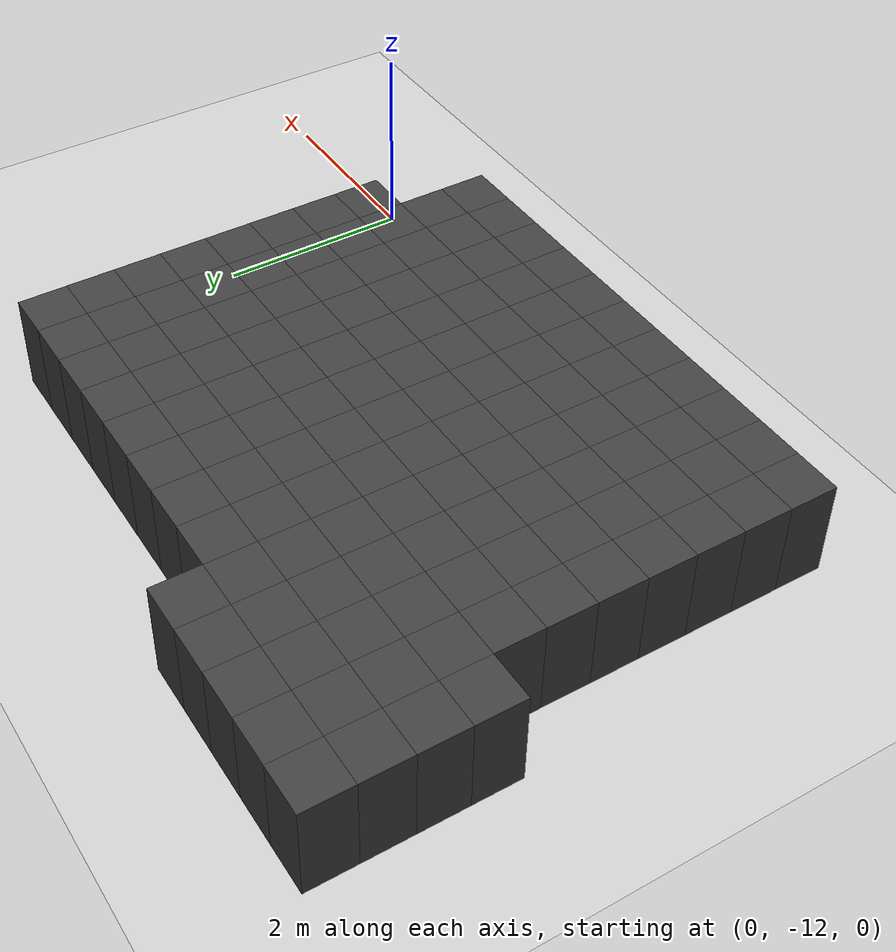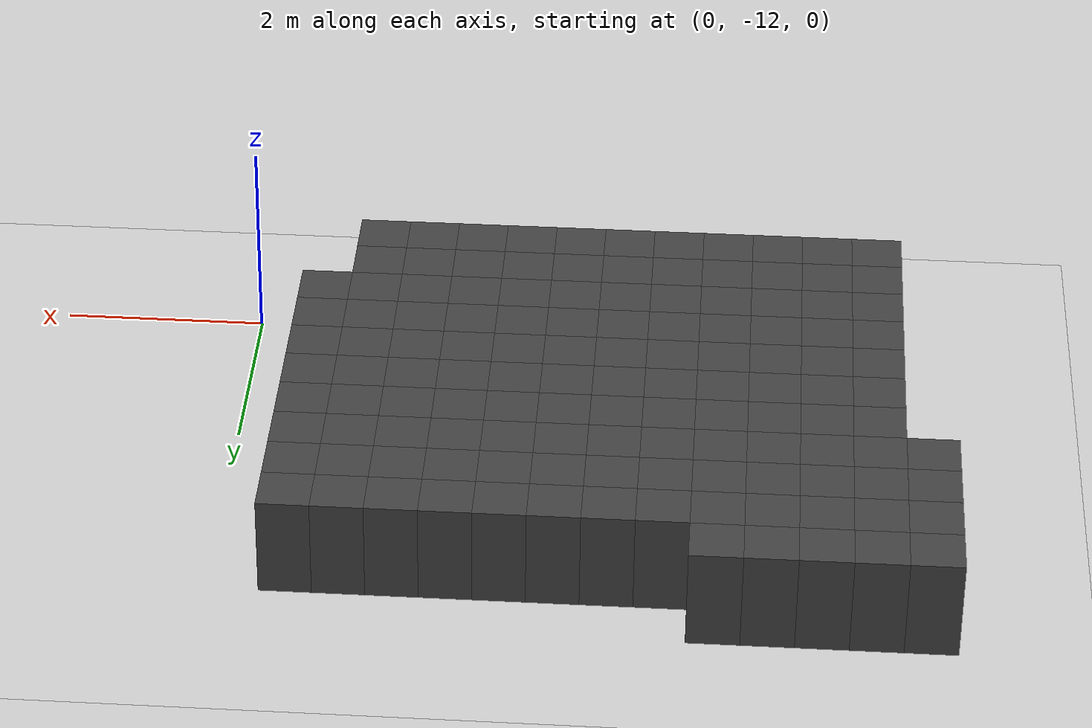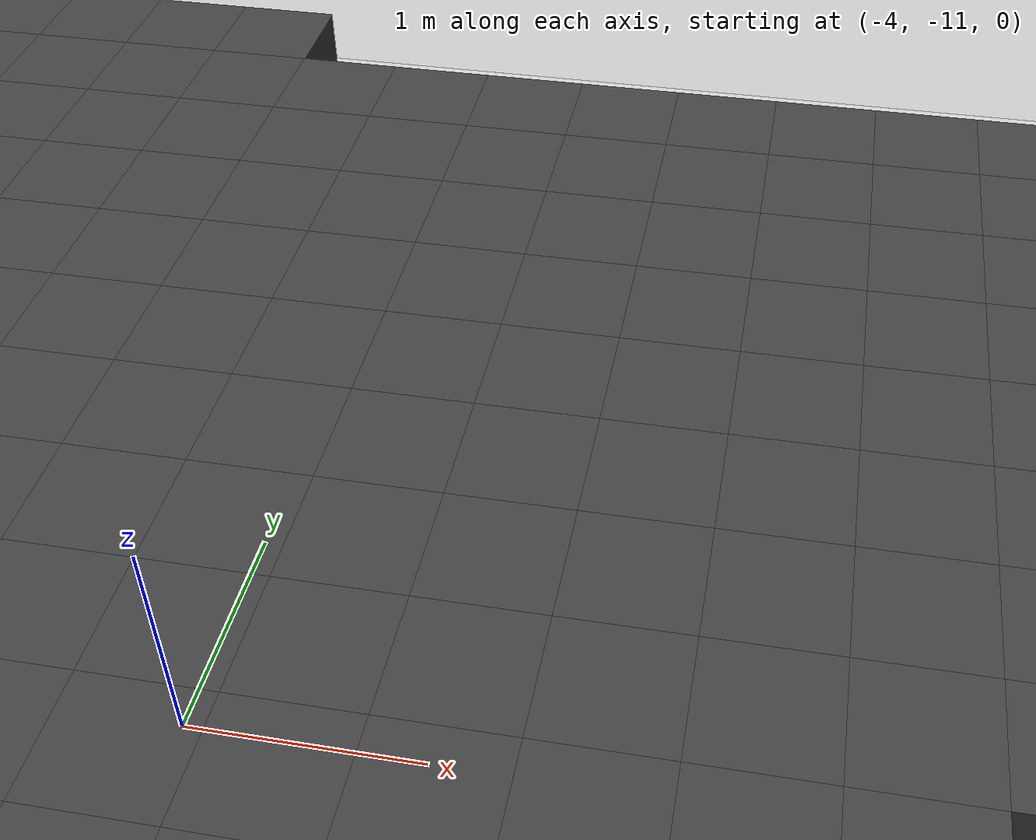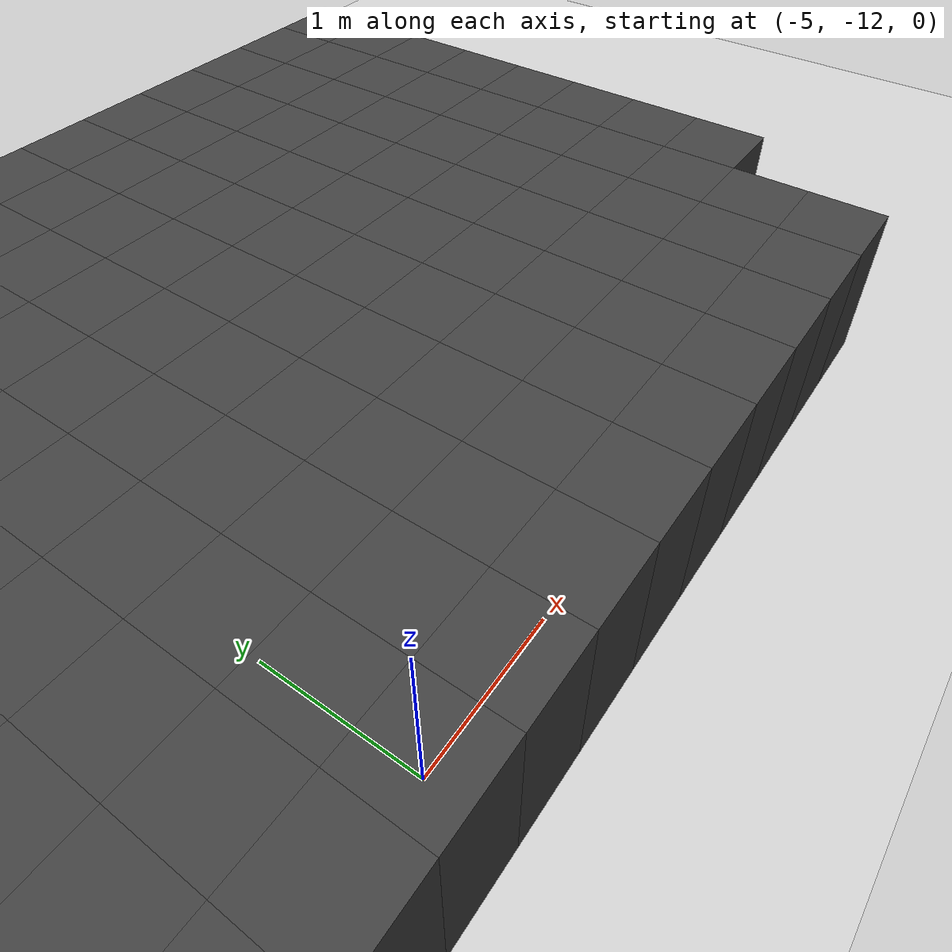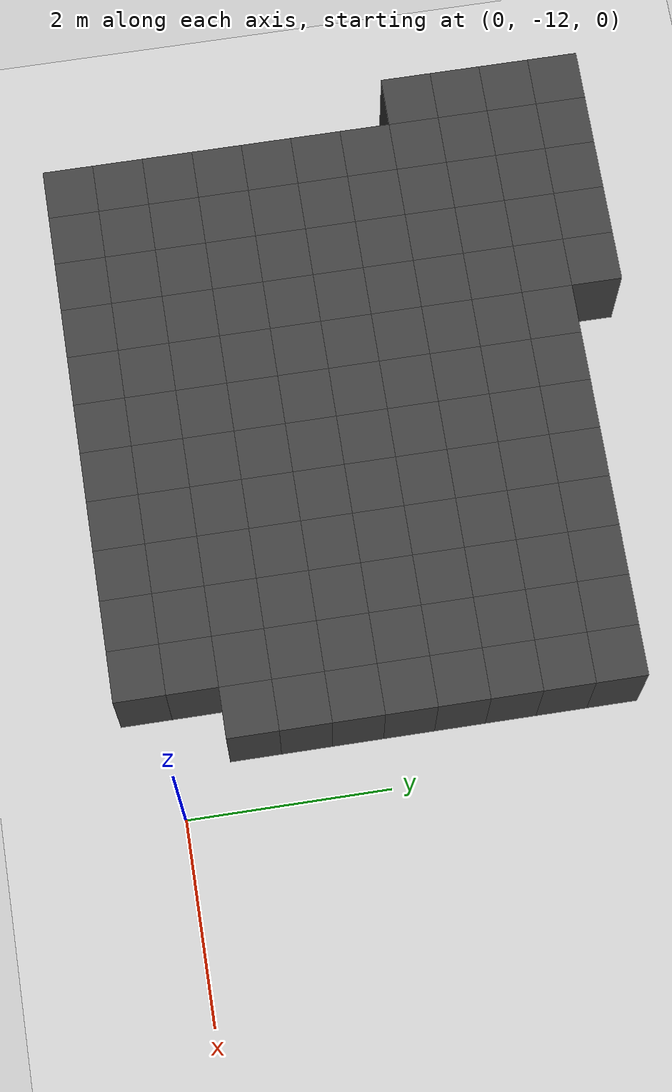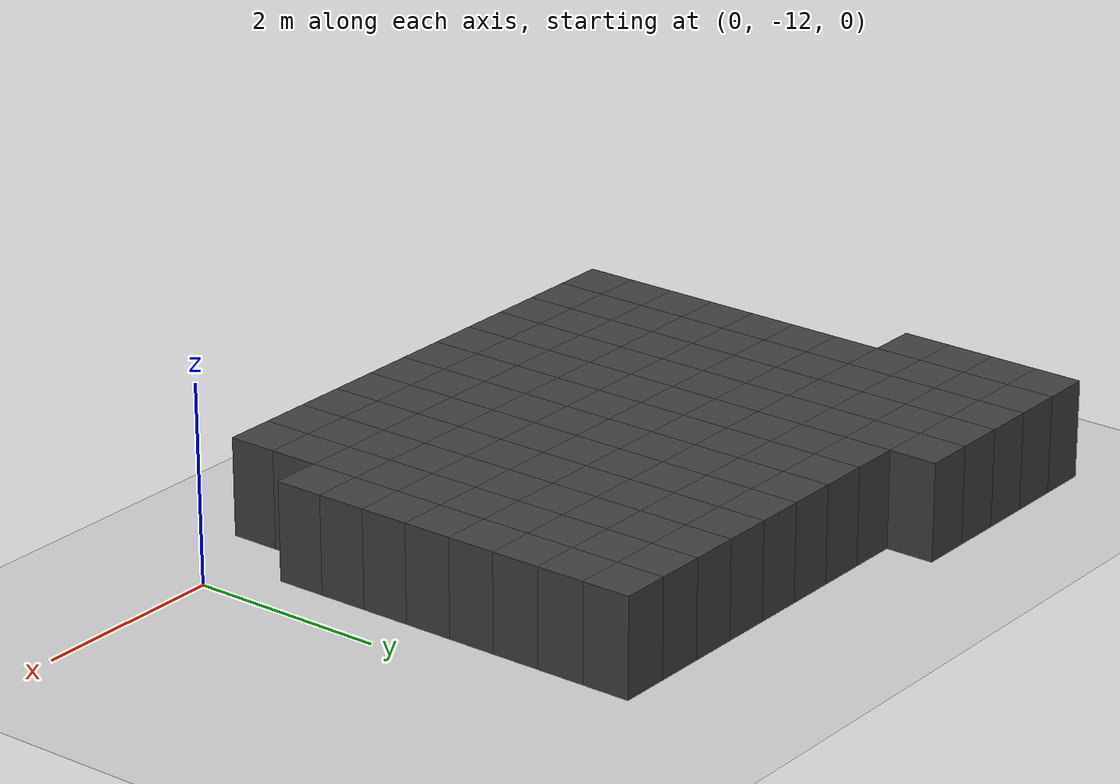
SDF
<sdf version="1.7">
 <world name="map_11672">
  <model name="ground_plane">
   <static>true</static>
   <link name="link">
    <collision name="collision">
     <geometry><plane><normal>0 0 1</normal><size>200 200</size></plane></geometry>
    </collision>
    <visual name="visual">
     <geometry><plane><normal>0 0 1</normal><size>200 200</size></plane></geometry>
     <material><ambient>0.8 0.8 0.8 1</ambient><diffuse>0.8 0.8 0.8 1</diffuse></material>
    </visual>
   </link>
  </model>
  <model name="maze_environment">
   <static>true</static>
   <link name="wall_1639">
    <pose>-6.750 -7.250 0.500 0 0 0</pose>
    <collision name="col"><geometry><box><size>0.5 0.5 1.0</size></box></geometry></collision>
    <visual name="vis">
     <geometry><box><size>0.5 0.5 1.0</size></box></geometry>
     <material><ambient>0.15 0.15 0.15 1</ambient><diffuse>0.25 0.25 0.25 1</diffuse></material>
    </visual>
   </link>
   <link name="wall_1640">
    <pose>-6.250 -7.250 0.500 0 0 0</pose>
    <collision name="col"><geometry><box><size>0.5 0.5 1.0</size></box></geometry></collision>
    <visual name="vis">
     <geometry><box><size>0.5 0.5 1.0</size></box></geometry>
     <material><ambient>0.15 0.15 0.15 1</ambient><diffuse>0.25 0.25 0.25 1</diffuse></material>
    </visual>
   </link>
   <link name="wall_1641">
    <pose>-5.750 -7.250 0.500 0 0 0</pose>
    <collision name="col"><geometry><box><size>0.5 0.5 1.0</size></box></geometry></collision>
    <visual name="vis">
     <geometry><box><size>0.5 0.5 1.0</size></box></geometry>
     <material><ambient>0.15 0.15 0.15 1</ambient><diffuse>0.25 0.25 0.25 1</diffuse></material>
    </visual>
   </link>
   <link name="wall_1642">
    <pose>-5.250 -7.250 0.500 0 0 0</pose>
    <collision name="col"><geometry><box><size>0.5 0.5 1.0</size></box></geometry></collision>
    <visual name="vis">
     <geometry><box><size>0.5 0.5 1.0</size></box></geometry>
     <material><ambient>0.15 0.15 0.15 1</ambient><diffuse>0.25 0.25 0.25 1</diffuse></material>
    </visual>
   </link>
   <link name="wall_1643">
    <pose>-4.750 -7.250 0.500 0 0 0</pose>
    <collision name="col"><geometry><box><size>0.5 0.5 1.0</size></box></geometry></collision>
    <visual name="vis">
     <geometry><box><size>0.5 0.5 1.0</size></box></geometry>
     <material><ambient>0.15 0.15 0.15 1</ambient><diffuse>0.25 0.25 0.25 1</diffuse></material>
    </visual>
   </link>
   <link name="wall_1688">
    <pose>-6.750 -7.750 0.500 0 0 0</pose>
    <collision name="col"><geometry><box><size>0.5 0.5 1.0</size></box></geometry></collision>
    <visual name="vis">
     <geometry><box><size>0.5 0.5 1.0</size></box></geometry>
     <material><ambient>0.15 0.15 0.15 1</ambient><diffuse>0.25 0.25 0.25 1</diffuse></material>
    </visual>
   </link>
   <link name="wall_1689">
    <pose>-6.250 -7.750 0.500 0 0 0</pose>
    <collision name="col"><geometry><box><size>0.5 0.5 1.0</size></box></geometry></collision>
    <visual name="vis">
     <geometry><box><size>0.5 0.5 1.0</size></box></geometry>
     <material><ambient>0.15 0.15 0.15 1</ambient><diffuse>0.25 0.25 0.25 1</diffuse></material>
    </visual>
   </link>
   <link name="wall_1690">
    <pose>-5.750 -7.750 0.500 0 0 0</pose>
    <collision name="col"><geometry><box><size>0.5 0.5 1.0</size></box></geometry></collision>
    <visual name="vis">
     <geometry><box><size>0.5 0.5 1.0</size></box></geometry>
     <material><ambient>0.15 0.15 0.15 1</ambient><diffuse>0.25 0.25 0.25 1</diffuse></material>
    </visual>
   </link>
   <link name="wall_1691">
    <pose>-5.250 -7.750 0.500 0 0 0</pose>
    <collision name="col"><geometry><box><size>0.5 0.5 1.0</size></box></geometry></collision>
    <visual name="vis">
     <geometry><box><size>0.5 0.5 1.0</size></box></geometry>
     <material><ambient>0.15 0.15 0.15 1</ambient><diffuse>0.25 0.25 0.25 1</diffuse></material>
    </visual>
   </link>
   <link name="wall_1692">
    <pose>-4.750 -7.750 0.500 0 0 0</pose>
    <collision name="col"><geometry><box><size>0.5 0.5 1.0</size></box></geometry></collision>
    <visual name="vis">
     <geometry><box><size>0.5 0.5 1.0</size></box></geometry>
     <material><ambient>0.15 0.15 0.15 1</ambient><diffuse>0.25 0.25 0.25 1</diffuse></material>
    </visual>
   </link>
   <link name="wall_1693">
    <pose>-4.250 -7.750 0.500 0 0 0</pose>
    <collision name="col"><geometry><box><size>0.5 0.5 1.0</size></box></geometry></collision>
    <visual name="vis">
     <geometry><box><size>0.5 0.5 1.0</size></box></geometry>
     <material><ambient>0.15 0.15 0.15 1</ambient><diffuse>0.25 0.25 0.25 1</diffuse></material>
    </visual>
   </link>
   <link name="wall_1694">
    <pose>-3.750 -7.750 0.500 0 0 0</pose>
    <collision name="col"><geometry><box><size>0.5 0.5 1.0</size></box></geometry></collision>
    <visual name="vis">
     <geometry><box><size>0.5 0.5 1.0</size></box></geometry>
     <material><ambient>0.15 0.15 0.15 1</ambient><diffuse>0.25 0.25 0.25 1</diffuse></material>
    </visual>
   </link>
   <link name="wall_1695">
    <pose>-3.250 -7.750 0.500 0 0 0</pose>
    <collision name="col"><geometry><box><size>0.5 0.5 1.0</size></box></geometry></collision>
    <visual name="vis">
     <geometry><box><size>0.5 0.5 1.0</size></box></geometry>
     <material><ambient>0.15 0.15 0.15 1</ambient><diffuse>0.25 0.25 0.25 1</diffuse></material>
    </visual>
   </link>
   <link name="wall_1696">
    <pose>-2.750 -7.750 0.500 0 0 0</pose>
    <collision name="col"><geometry><box><size>0.5 0.5 1.0</size></box></geometry></collision>
    <visual name="vis">
     <geometry><box><size>0.5 0.5 1.0</size></box></geometry>
     <material><ambient>0.15 0.15 0.15 1</ambient><diffuse>0.25 0.25 0.25 1</diffuse></material>
    </visual>
   </link>
   <link name="wall_1697">
    <pose>-2.250 -7.750 0.500 0 0 0</pose>
    <collision name="col"><geometry><box><size>0.5 0.5 1.0</size></box></geometry></collision>
    <visual name="vis">
     <geometry><box><size>0.5 0.5 1.0</size></box></geometry>
     <material><ambient>0.15 0.15 0.15 1</ambient><diffuse>0.25 0.25 0.25 1</diffuse></material>
    </visual>
   </link>
   <link name="wall_1698">
    <pose>-1.750 -7.750 0.500 0 0 0</pose>
    <collision name="col"><geometry><box><size>0.5 0.5 1.0</size></box></geometry></collision>
    <visual name="vis">
     <geometry><box><size>0.5 0.5 1.0</size></box></geometry>
     <material><ambient>0.15 0.15 0.15 1</ambient><diffuse>0.25 0.25 0.25 1</diffuse></material>
    </visual>
   </link>
   <link name="wall_1699">
    <pose>-1.250 -7.750 0.500 0 0 0</pose>
    <collision name="col"><geometry><box><size>0.5 0.5 1.0</size></box></geometry></collision>
    <visual name="vis">
     <geometry><box><size>0.5 0.5 1.0</size></box></geometry>
     <material><ambient>0.15 0.15 0.15 1</ambient><diffuse>0.25 0.25 0.25 1</diffuse></material>
    </visual>
   </link>
   <link name="wall_1700">
    <pose>-0.750 -7.750 0.500 0 0 0</pose>
    <collision name="col"><geometry><box><size>0.5 0.5 1.0</size></box></geometry></collision>
    <visual name="vis">
     <geometry><box><size>0.5 0.5 1.0</size></box></geometry>
     <material><ambient>0.15 0.15 0.15 1</ambient><diffuse>0.25 0.25 0.25 1</diffuse></material>
    </visual>
   </link>
   <link name="wall_1737">
    <pose>-6.750 -8.250 0.500 0 0 0</pose>
    <collision name="col"><geometry><box><size>0.5 0.5 1.0</size></box></geometry></collision>
    <visual name="vis">
     <geometry><box><size>0.5 0.5 1.0</size></box></geometry>
     <material><ambient>0.15 0.15 0.15 1</ambient><diffuse>0.25 0.25 0.25 1</diffuse></material>
    </visual>
   </link>
   <link name="wall_1738">
    <pose>-6.250 -8.250 0.500 0 0 0</pose>
    <collision name="col"><geometry><box><size>0.5 0.5 1.0</size></box></geometry></collision>
    <visual name="vis">
     <geometry><box><size>0.5 0.5 1.0</size></box></geometry>
     <material><ambient>0.15 0.15 0.15 1</ambient><diffuse>0.25 0.25 0.25 1</diffuse></material>
    </visual>
   </link>
   <link name="wall_1739">
    <pose>-5.750 -8.250 0.500 0 0 0</pose>
    <collision name="col"><geometry><box><size>0.5 0.5 1.0</size></box></geometry></collision>
    <visual name="vis">
     <geometry><box><size>0.5 0.5 1.0</size></box></geometry>
     <material><ambient>0.15 0.15 0.15 1</ambient><diffuse>0.25 0.25 0.25 1</diffuse></material>
    </visual>
   </link>
   <link name="wall_1740">
    <pose>-5.250 -8.250 0.500 0 0 0</pose>
    <collision name="col"><geometry><box><size>0.5 0.5 1.0</size></box></geometry></collision>
    <visual name="vis">
     <geometry><box><size>0.5 0.5 1.0</size></box></geometry>
     <material><ambient>0.15 0.15 0.15 1</ambient><diffuse>0.25 0.25 0.25 1</diffuse></material>
    </visual>
   </link>
   <link name="wall_1741">
    <pose>-4.750 -8.250 0.500 0 0 0</pose>
    <collision name="col"><geometry><box><size>0.5 0.5 1.0</size></box></geometry></collision>
    <visual name="vis">
     <geometry><box><size>0.5 0.5 1.0</size></box></geometry>
     <material><ambient>0.15 0.15 0.15 1</ambient><diffuse>0.25 0.25 0.25 1</diffuse></material>
    </visual>
   </link>
   <link name="wall_1742">
    <pose>-4.250 -8.250 0.500 0 0 0</pose>
    <collision name="col"><geometry><box><size>0.5 0.5 1.0</size></box></geometry></collision>
    <visual name="vis">
     <geometry><box><size>0.5 0.5 1.0</size></box></geometry>
     <material><ambient>0.15 0.15 0.15 1</ambient><diffuse>0.25 0.25 0.25 1</diffuse></material>
    </visual>
   </link>
   <link name="wall_1743">
    <pose>-3.750 -8.250 0.500 0 0 0</pose>
    <collision name="col"><geometry><box><size>0.5 0.5 1.0</size></box></geometry></collision>
    <visual name="vis">
     <geometry><box><size>0.5 0.5 1.0</size></box></geometry>
     <material><ambient>0.15 0.15 0.15 1</ambient><diffuse>0.25 0.25 0.25 1</diffuse></material>
    </visual>
   </link>
   <link name="wall_1744">
    <pose>-3.250 -8.250 0.500 0 0 0</pose>
    <collision name="col"><geometry><box><size>0.5 0.5 1.0</size></box></geometry></collision>
    <visual name="vis">
     <geometry><box><size>0.5 0.5 1.0</size></box></geometry>
     <material><ambient>0.15 0.15 0.15 1</ambient><diffuse>0.25 0.25 0.25 1</diffuse></material>
    </visual>
   </link>
   <link name="wall_1745">
    <pose>-2.750 -8.250 0.500 0 0 0</pose>
    <collision name="col"><geometry><box><size>0.5 0.5 1.0</size></box></geometry></collision>
    <visual name="vis">
     <geometry><box><size>0.5 0.5 1.0</size></box></geometry>
     <material><ambient>0.15 0.15 0.15 1</ambient><diffuse>0.25 0.25 0.25 1</diffuse></material>
    </visual>
   </link>
   <link name="wall_1746">
    <pose>-2.250 -8.250 0.500 0 0 0</pose>
    <collision name="col"><geometry><box><size>0.5 0.5 1.0</size></box></geometry></collision>
    <visual name="vis">
     <geometry><box><size>0.5 0.5 1.0</size></box></geometry>
     <material><ambient>0.15 0.15 0.15 1</ambient><diffuse>0.25 0.25 0.25 1</diffuse></material>
    </visual>
   </link>
   <link name="wall_1747">
    <pose>-1.750 -8.250 0.500 0 0 0</pose>
    <collision name="col"><geometry><box><size>0.5 0.5 1.0</size></box></geometry></collision>
    <visual name="vis">
     <geometry><box><size>0.5 0.5 1.0</size></box></geometry>
     <material><ambient>0.15 0.15 0.15 1</ambient><diffuse>0.25 0.25 0.25 1</diffuse></material>
    </visual>
   </link>
   <link name="wall_1748">
    <pose>-1.250 -8.250 0.500 0 0 0</pose>
    <collision name="col"><geometry><box><size>0.5 0.5 1.0</size></box></geometry></collision>
    <visual name="vis">
     <geometry><box><size>0.5 0.5 1.0</size></box></geometry>
     <material><ambient>0.15 0.15 0.15 1</ambient><diffuse>0.25 0.25 0.25 1</diffuse></material>
    </visual>
   </link>
   <link name="wall_1749">
    <pose>-0.750 -8.250 0.500 0 0 0</pose>
    <collision name="col"><geometry><box><size>0.5 0.5 1.0</size></box></geometry></collision>
    <visual name="vis">
     <geometry><box><size>0.5 0.5 1.0</size></box></geometry>
     <material><ambient>0.15 0.15 0.15 1</ambient><diffuse>0.25 0.25 0.25 1</diffuse></material>
    </visual>
   </link>
   <link name="wall_1786">
    <pose>-6.750 -8.750 0.500 0 0 0</pose>
    <collision name="col"><geometry><box><size>0.5 0.5 1.0</size></box></geometry></collision>
    <visual name="vis">
     <geometry><box><size>0.5 0.5 1.0</size></box></geometry>
     <material><ambient>0.15 0.15 0.15 1</ambient><diffuse>0.25 0.25 0.25 1</diffuse></material>
    </visual>
   </link>
   <link name="wall_1787">
    <pose>-6.250 -8.750 0.500 0 0 0</pose>
    <collision name="col"><geometry><box><size>0.5 0.5 1.0</size></box></geometry></collision>
    <visual name="vis">
     <geometry><box><size>0.5 0.5 1.0</size></box></geometry>
     <material><ambient>0.15 0.15 0.15 1</ambient><diffuse>0.25 0.25 0.25 1</diffuse></material>
    </visual>
   </link>
   <link name="wall_1788">
    <pose>-5.750 -8.750 0.500 0 0 0</pose>
    <collision name="col"><geometry><box><size>0.5 0.5 1.0</size></box></geometry></collision>
    <visual name="vis">
     <geometry><box><size>0.5 0.5 1.0</size></box></geometry>
     <material><ambient>0.15 0.15 0.15 1</ambient><diffuse>0.25 0.25 0.25 1</diffuse></material>
    </visual>
   </link>
   <link name="wall_1789">
    <pose>-5.250 -8.750 0.500 0 0 0</pose>
    <collision name="col"><geometry><box><size>0.5 0.5 1.0</size></box></geometry></collision>
    <visual name="vis">
     <geometry><box><size>0.5 0.5 1.0</size></box></geometry>
     <material><ambient>0.15 0.15 0.15 1</ambient><diffuse>0.25 0.25 0.25 1</diffuse></material>
    </visual>
   </link>
   <link name="wall_1790">
    <pose>-4.750 -8.750 0.500 0 0 0</pose>
    <collision name="col"><geometry><box><size>0.5 0.5 1.0</size></box></geometry></collision>
    <visual name="vis">
     <geometry><box><size>0.5 0.5 1.0</size></box></geometry>
     <material><ambient>0.15 0.15 0.15 1</ambient><diffuse>0.25 0.25 0.25 1</diffuse></material>
    </visual>
   </link>
   <link name="wall_1791">
    <pose>-4.250 -8.750 0.500 0 0 0</pose>
    <collision name="col"><geometry><box><size>0.5 0.5 1.0</size></box></geometry></collision>
    <visual name="vis">
     <geometry><box><size>0.5 0.5 1.0</size></box></geometry>
     <material><ambient>0.15 0.15 0.15 1</ambient><diffuse>0.25 0.25 0.25 1</diffuse></material>
    </visual>
   </link>
   <link name="wall_1792">
    <pose>-3.750 -8.750 0.500 0 0 0</pose>
    <collision name="col"><geometry><box><size>0.5 0.5 1.0</size></box></geometry></collision>
    <visual name="vis">
     <geometry><box><size>0.5 0.5 1.0</size></box></geometry>
     <material><ambient>0.15 0.15 0.15 1</ambient><diffuse>0.25 0.25 0.25 1</diffuse></material>
    </visual>
   </link>
   <link name="wall_1793">
    <pose>-3.250 -8.750 0.500 0 0 0</pose>
    <collision name="col"><geometry><box><size>0.5 0.5 1.0</size></box></geometry></collision>
    <visual name="vis">
     <geometry><box><size>0.5 0.5 1.0</size></box></geometry>
     <material><ambient>0.15 0.15 0.15 1</ambient><diffuse>0.25 0.25 0.25 1</diffuse></material>
    </visual>
   </link>
   <link name="wall_1794">
    <pose>-2.750 -8.750 0.500 0 0 0</pose>
    <collision name="col"><geometry><box><size>0.5 0.5 1.0</size></box></geometry></collision>
    <visual name="vis">
     <geometry><box><size>0.5 0.5 1.0</size></box></geometry>
     <material><ambient>0.15 0.15 0.15 1</ambient><diffuse>0.25 0.25 0.25 1</diffuse></material>
    </visual>
   </link>
   <link name="wall_1795">
    <pose>-2.250 -8.750 0.500 0 0 0</pose>
    <collision name="col"><geometry><box><size>0.5 0.5 1.0</size></box></geometry></collision>
    <visual name="vis">
     <geometry><box><size>0.5 0.5 1.0</size></box></geometry>
     <material><ambient>0.15 0.15 0.15 1</ambient><diffuse>0.25 0.25 0.25 1</diffuse></material>
    </visual>
   </link>
   <link name="wall_1796">
    <pose>-1.750 -8.750 0.500 0 0 0</pose>
    <collision name="col"><geometry><box><size>0.5 0.5 1.0</size></box></geometry></collision>
    <visual name="vis">
     <geometry><box><size>0.5 0.5 1.0</size></box></geometry>
     <material><ambient>0.15 0.15 0.15 1</ambient><diffuse>0.25 0.25 0.25 1</diffuse></material>
    </visual>
   </link>
   <link name="wall_1797">
    <pose>-1.250 -8.750 0.500 0 0 0</pose>
    <collision name="col"><geometry><box><size>0.5 0.5 1.0</size></box></geometry></collision>
    <visual name="vis">
     <geometry><box><size>0.5 0.5 1.0</size></box></geometry>
     <material><ambient>0.15 0.15 0.15 1</ambient><diffuse>0.25 0.25 0.25 1</diffuse></material>
    </visual>
   </link>
   <link name="wall_1798">
    <pose>-0.750 -8.750 0.500 0 0 0</pose>
    <collision name="col"><geometry><box><size>0.5 0.5 1.0</size></box></geometry></collision>
    <visual name="vis">
     <geometry><box><size>0.5 0.5 1.0</size></box></geometry>
     <material><ambient>0.15 0.15 0.15 1</ambient><diffuse>0.25 0.25 0.25 1</diffuse></material>
    </visual>
   </link>
   <link name="wall_1836">
    <pose>-6.250 -9.250 0.500 0 0 0</pose>
    <collision name="col"><geometry><box><size>0.5 0.5 1.0</size></box></geometry></collision>
    <visual name="vis">
     <geometry><box><size>0.5 0.5 1.0</size></box></geometry>
     <material><ambient>0.15 0.15 0.15 1</ambient><diffuse>0.25 0.25 0.25 1</diffuse></material>
    </visual>
   </link>
   <link name="wall_1837">
    <pose>-5.750 -9.250 0.500 0 0 0</pose>
    <collision name="col"><geometry><box><size>0.5 0.5 1.0</size></box></geometry></collision>
    <visual name="vis">
     <geometry><box><size>0.5 0.5 1.0</size></box></geometry>
     <material><ambient>0.15 0.15 0.15 1</ambient><diffuse>0.25 0.25 0.25 1</diffuse></material>
    </visual>
   </link>
   <link name="wall_1838">
    <pose>-5.250 -9.250 0.500 0 0 0</pose>
    <collision name="col"><geometry><box><size>0.5 0.5 1.0</size></box></geometry></collision>
    <visual name="vis">
     <geometry><box><size>0.5 0.5 1.0</size></box></geometry>
     <material><ambient>0.15 0.15 0.15 1</ambient><diffuse>0.25 0.25 0.25 1</diffuse></material>
    </visual>
   </link>
   <link name="wall_1839">
    <pose>-4.750 -9.250 0.500 0 0 0</pose>
    <collision name="col"><geometry><box><size>0.5 0.5 1.0</size></box></geometry></collision>
    <visual name="vis">
     <geometry><box><size>0.5 0.5 1.0</size></box></geometry>
     <material><ambient>0.15 0.15 0.15 1</ambient><diffuse>0.25 0.25 0.25 1</diffuse></material>
    </visual>
   </link>
   <link name="wall_1840">
    <pose>-4.250 -9.250 0.500 0 0 0</pose>
    <collision name="col"><geometry><box><size>0.5 0.5 1.0</size></box></geometry></collision>
    <visual name="vis">
     <geometry><box><size>0.5 0.5 1.0</size></box></geometry>
     <material><ambient>0.15 0.15 0.15 1</ambient><diffuse>0.25 0.25 0.25 1</diffuse></material>
    </visual>
   </link>
   <link name="wall_1841">
    <pose>-3.750 -9.250 0.500 0 0 0</pose>
    <collision name="col"><geometry><box><size>0.5 0.5 1.0</size></box></geometry></collision>
    <visual name="vis">
     <geometry><box><size>0.5 0.5 1.0</size></box></geometry>
     <material><ambient>0.15 0.15 0.15 1</ambient><diffuse>0.25 0.25 0.25 1</diffuse></material>
    </visual>
   </link>
   <link name="wall_1842">
    <pose>-3.250 -9.250 0.500 0 0 0</pose>
    <collision name="col"><geometry><box><size>0.5 0.5 1.0</size></box></geometry></collision>
    <visual name="vis">
     <geometry><box><size>0.5 0.5 1.0</size></box></geometry>
     <material><ambient>0.15 0.15 0.15 1</ambient><diffuse>0.25 0.25 0.25 1</diffuse></material>
    </visual>
   </link>
   <link name="wall_1843">
    <pose>-2.750 -9.250 0.500 0 0 0</pose>
    <collision name="col"><geometry><box><size>0.5 0.5 1.0</size></box></geometry></collision>
    <visual name="vis">
     <geometry><box><size>0.5 0.5 1.0</size></box></geometry>
     <material><ambient>0.15 0.15 0.15 1</ambient><diffuse>0.25 0.25 0.25 1</diffuse></material>
    </visual>
   </link>
   <link name="wall_1844">
    <pose>-2.250 -9.250 0.500 0 0 0</pose>
    <collision name="col"><geometry><box><size>0.5 0.5 1.0</size></box></geometry></collision>
    <visual name="vis">
     <geometry><box><size>0.5 0.5 1.0</size></box></geometry>
     <material><ambient>0.15 0.15 0.15 1</ambient><diffuse>0.25 0.25 0.25 1</diffuse></material>
    </visual>
   </link>
   <link name="wall_1845">
    <pose>-1.750 -9.250 0.500 0 0 0</pose>
    <collision name="col"><geometry><box><size>0.5 0.5 1.0</size></box></geometry></collision>
    <visual name="vis">
     <geometry><box><size>0.5 0.5 1.0</size></box></geometry>
     <material><ambient>0.15 0.15 0.15 1</ambient><diffuse>0.25 0.25 0.25 1</diffuse></material>
    </visual>
   </link>
   <link name="wall_1846">
    <pose>-1.250 -9.250 0.500 0 0 0</pose>
    <collision name="col"><geometry><box><size>0.5 0.5 1.0</size></box></geometry></collision>
    <visual name="vis">
     <geometry><box><size>0.5 0.5 1.0</size></box></geometry>
     <material><ambient>0.15 0.15 0.15 1</ambient><diffuse>0.25 0.25 0.25 1</diffuse></material>
    </visual>
   </link>
   <link name="wall_1847">
    <pose>-0.750 -9.250 0.500 0 0 0</pose>
    <collision name="col"><geometry><box><size>0.5 0.5 1.0</size></box></geometry></collision>
    <visual name="vis">
     <geometry><box><size>0.5 0.5 1.0</size></box></geometry>
     <material><ambient>0.15 0.15 0.15 1</ambient><diffuse>0.25 0.25 0.25 1</diffuse></material>
    </visual>
   </link>
   <link name="wall_1885">
    <pose>-6.250 -9.750 0.500 0 0 0</pose>
    <collision name="col"><geometry><box><size>0.5 0.5 1.0</size></box></geometry></collision>
    <visual name="vis">
     <geometry><box><size>0.5 0.5 1.0</size></box></geometry>
     <material><ambient>0.15 0.15 0.15 1</ambient><diffuse>0.25 0.25 0.25 1</diffuse></material>
    </visual>
   </link>
   <link name="wall_1886">
    <pose>-5.750 -9.750 0.500 0 0 0</pose>
    <collision name="col"><geometry><box><size>0.5 0.5 1.0</size></box></geometry></collision>
    <visual name="vis">
     <geometry><box><size>0.5 0.5 1.0</size></box></geometry>
     <material><ambient>0.15 0.15 0.15 1</ambient><diffuse>0.25 0.25 0.25 1</diffuse></material>
    </visual>
   </link>
   <link name="wall_1887">
    <pose>-5.250 -9.750 0.500 0 0 0</pose>
    <collision name="col"><geometry><box><size>0.5 0.5 1.0</size></box></geometry></collision>
    <visual name="vis">
     <geometry><box><size>0.5 0.5 1.0</size></box></geometry>
     <material><ambient>0.15 0.15 0.15 1</ambient><diffuse>0.25 0.25 0.25 1</diffuse></material>
    </visual>
   </link>
   <link name="wall_1888">
    <pose>-4.750 -9.750 0.500 0 0 0</pose>
    <collision name="col"><geometry><box><size>0.5 0.5 1.0</size></box></geometry></collision>
    <visual name="vis">
     <geometry><box><size>0.5 0.5 1.0</size></box></geometry>
     <material><ambient>0.15 0.15 0.15 1</ambient><diffuse>0.25 0.25 0.25 1</diffuse></material>
    </visual>
   </link>
   <link name="wall_1889">
    <pose>-4.250 -9.750 0.500 0 0 0</pose>
    <collision name="col"><geometry><box><size>0.5 0.5 1.0</size></box></geometry></collision>
    <visual name="vis">
     <geometry><box><size>0.5 0.5 1.0</size></box></geometry>
     <material><ambient>0.15 0.15 0.15 1</ambient><diffuse>0.25 0.25 0.25 1</diffuse></material>
    </visual>
   </link>
   <link name="wall_1890">
    <pose>-3.750 -9.750 0.500 0 0 0</pose>
    <collision name="col"><geometry><box><size>0.5 0.5 1.0</size></box></geometry></collision>
    <visual name="vis">
     <geometry><box><size>0.5 0.5 1.0</size></box></geometry>
     <material><ambient>0.15 0.15 0.15 1</ambient><diffuse>0.25 0.25 0.25 1</diffuse></material>
    </visual>
   </link>
   <link name="wall_1891">
    <pose>-3.250 -9.750 0.500 0 0 0</pose>
    <collision name="col"><geometry><box><size>0.5 0.5 1.0</size></box></geometry></collision>
    <visual name="vis">
     <geometry><box><size>0.5 0.5 1.0</size></box></geometry>
     <material><ambient>0.15 0.15 0.15 1</ambient><diffuse>0.25 0.25 0.25 1</diffuse></material>
    </visual>
   </link>
   <link name="wall_1892">
    <pose>-2.750 -9.750 0.500 0 0 0</pose>
    <collision name="col"><geometry><box><size>0.5 0.5 1.0</size></box></geometry></collision>
    <visual name="vis">
     <geometry><box><size>0.5 0.5 1.0</size></box></geometry>
     <material><ambient>0.15 0.15 0.15 1</ambient><diffuse>0.25 0.25 0.25 1</diffuse></material>
    </visual>
   </link>
   <link name="wall_1893">
    <pose>-2.250 -9.750 0.500 0 0 0</pose>
    <collision name="col"><geometry><box><size>0.5 0.5 1.0</size></box></geometry></collision>
    <visual name="vis">
     <geometry><box><size>0.5 0.5 1.0</size></box></geometry>
     <material><ambient>0.15 0.15 0.15 1</ambient><diffuse>0.25 0.25 0.25 1</diffuse></material>
    </visual>
   </link>
   <link name="wall_1894">
    <pose>-1.750 -9.750 0.500 0 0 0</pose>
    <collision name="col"><geometry><box><size>0.5 0.5 1.0</size></box></geometry></collision>
    <visual name="vis">
     <geometry><box><size>0.5 0.5 1.0</size></box></geometry>
     <material><ambient>0.15 0.15 0.15 1</ambient><diffuse>0.25 0.25 0.25 1</diffuse></material>
    </visual>
   </link>
   <link name="wall_1895">
    <pose>-1.250 -9.750 0.500 0 0 0</pose>
    <collision name="col"><geometry><box><size>0.5 0.5 1.0</size></box></geometry></collision>
    <visual name="vis">
     <geometry><box><size>0.5 0.5 1.0</size></box></geometry>
     <material><ambient>0.15 0.15 0.15 1</ambient><diffuse>0.25 0.25 0.25 1</diffuse></material>
    </visual>
   </link>
   <link name="wall_1896">
    <pose>-0.750 -9.750 0.500 0 0 0</pose>
    <collision name="col"><geometry><box><size>0.5 0.5 1.0</size></box></geometry></collision>
    <visual name="vis">
     <geometry><box><size>0.5 0.5 1.0</size></box></geometry>
     <material><ambient>0.15 0.15 0.15 1</ambient><diffuse>0.25 0.25 0.25 1</diffuse></material>
    </visual>
   </link>
   <link name="wall_1934">
    <pose>-6.250 -10.250 0.500 0 0 0</pose>
    <collision name="col"><geometry><box><size>0.5 0.5 1.0</size></box></geometry></collision>
    <visual name="vis">
     <geometry><box><size>0.5 0.5 1.0</size></box></geometry>
     <material><ambient>0.15 0.15 0.15 1</ambient><diffuse>0.25 0.25 0.25 1</diffuse></material>
    </visual>
   </link>
   <link name="wall_1935">
    <pose>-5.750 -10.250 0.500 0 0 0</pose>
    <collision name="col"><geometry><box><size>0.5 0.5 1.0</size></box></geometry></collision>
    <visual name="vis">
     <geometry><box><size>0.5 0.5 1.0</size></box></geometry>
     <material><ambient>0.15 0.15 0.15 1</ambient><diffuse>0.25 0.25 0.25 1</diffuse></material>
    </visual>
   </link>
   <link name="wall_1936">
    <pose>-5.250 -10.250 0.500 0 0 0</pose>
    <collision name="col"><geometry><box><size>0.5 0.5 1.0</size></box></geometry></collision>
    <visual name="vis">
     <geometry><box><size>0.5 0.5 1.0</size></box></geometry>
     <material><ambient>0.15 0.15 0.15 1</ambient><diffuse>0.25 0.25 0.25 1</diffuse></material>
    </visual>
   </link>
   <link name="wall_1937">
    <pose>-4.750 -10.250 0.500 0 0 0</pose>
    <collision name="col"><geometry><box><size>0.5 0.5 1.0</size></box></geometry></collision>
    <visual name="vis">
     <geometry><box><size>0.5 0.5 1.0</size></box></geometry>
     <material><ambient>0.15 0.15 0.15 1</ambient><diffuse>0.25 0.25 0.25 1</diffuse></material>
    </visual>
   </link>
   <link name="wall_1938">
    <pose>-4.250 -10.250 0.500 0 0 0</pose>
    <collision name="col"><geometry><box><size>0.5 0.5 1.0</size></box></geometry></collision>
    <visual name="vis">
     <geometry><box><size>0.5 0.5 1.0</size></box></geometry>
     <material><ambient>0.15 0.15 0.15 1</ambient><diffuse>0.25 0.25 0.25 1</diffuse></material>
    </visual>
   </link>
   <link name="wall_1939">
    <pose>-3.750 -10.250 0.500 0 0 0</pose>
    <collision name="col"><geometry><box><size>0.5 0.5 1.0</size></box></geometry></collision>
    <visual name="vis">
     <geometry><box><size>0.5 0.5 1.0</size></box></geometry>
     <material><ambient>0.15 0.15 0.15 1</ambient><diffuse>0.25 0.25 0.25 1</diffuse></material>
    </visual>
   </link>
   <link name="wall_1940">
    <pose>-3.250 -10.250 0.500 0 0 0</pose>
    <collision name="col"><geometry><box><size>0.5 0.5 1.0</size></box></geometry></collision>
    <visual name="vis">
     <geometry><box><size>0.5 0.5 1.0</size></box></geometry>
     <material><ambient>0.15 0.15 0.15 1</ambient><diffuse>0.25 0.25 0.25 1</diffuse></material>
    </visual>
   </link>
   <link name="wall_1941">
    <pose>-2.750 -10.250 0.500 0 0 0</pose>
    <collision name="col"><geometry><box><size>0.5 0.5 1.0</size></box></geometry></collision>
    <visual name="vis">
     <geometry><box><size>0.5 0.5 1.0</size></box></geometry>
     <material><ambient>0.15 0.15 0.15 1</ambient><diffuse>0.25 0.25 0.25 1</diffuse></material>
    </visual>
   </link>
   <link name="wall_1942">
    <pose>-2.250 -10.250 0.500 0 0 0</pose>
    <collision name="col"><geometry><box><size>0.5 0.5 1.0</size></box></geometry></collision>
    <visual name="vis">
     <geometry><box><size>0.5 0.5 1.0</size></box></geometry>
     <material><ambient>0.15 0.15 0.15 1</ambient><diffuse>0.25 0.25 0.25 1</diffuse></material>
    </visual>
   </link>
   <link name="wall_1943">
    <pose>-1.750 -10.250 0.500 0 0 0</pose>
    <collision name="col"><geometry><box><size>0.5 0.5 1.0</size></box></geometry></collision>
    <visual name="vis">
     <geometry><box><size>0.5 0.5 1.0</size></box></geometry>
     <material><ambient>0.15 0.15 0.15 1</ambient><diffuse>0.25 0.25 0.25 1</diffuse></material>
    </visual>
   </link>
   <link name="wall_1944">
    <pose>-1.250 -10.250 0.500 0 0 0</pose>
    <collision name="col"><geometry><box><size>0.5 0.5 1.0</size></box></geometry></collision>
    <visual name="vis">
     <geometry><box><size>0.5 0.5 1.0</size></box></geometry>
     <material><ambient>0.15 0.15 0.15 1</ambient><diffuse>0.25 0.25 0.25 1</diffuse></material>
    </visual>
   </link>
   <link name="wall_1945">
    <pose>-0.750 -10.250 0.500 0 0 0</pose>
    <collision name="col"><geometry><box><size>0.5 0.5 1.0</size></box></geometry></collision>
    <visual name="vis">
     <geometry><box><size>0.5 0.5 1.0</size></box></geometry>
     <material><ambient>0.15 0.15 0.15 1</ambient><diffuse>0.25 0.25 0.25 1</diffuse></material>
    </visual>
   </link>
   <link name="wall_1983">
    <pose>-6.250 -10.750 0.500 0 0 0</pose>
    <collision name="col"><geometry><box><size>0.5 0.5 1.0</size></box></geometry></collision>
    <visual name="vis">
     <geometry><box><size>0.5 0.5 1.0</size></box></geometry>
     <material><ambient>0.15 0.15 0.15 1</ambient><diffuse>0.25 0.25 0.25 1</diffuse></material>
    </visual>
   </link>
   <link name="wall_1984">
    <pose>-5.750 -10.750 0.500 0 0 0</pose>
    <collision name="col"><geometry><box><size>0.5 0.5 1.0</size></box></geometry></collision>
    <visual name="vis">
     <geometry><box><size>0.5 0.5 1.0</size></box></geometry>
     <material><ambient>0.15 0.15 0.15 1</ambient><diffuse>0.25 0.25 0.25 1</diffuse></material>
    </visual>
   </link>
   <link name="wall_1985">
    <pose>-5.250 -10.750 0.500 0 0 0</pose>
    <collision name="col"><geometry><box><size>0.5 0.5 1.0</size></box></geometry></collision>
    <visual name="vis">
     <geometry><box><size>0.5 0.5 1.0</size></box></geometry>
     <material><ambient>0.15 0.15 0.15 1</ambient><diffuse>0.25 0.25 0.25 1</diffuse></material>
    </visual>
   </link>
   <link name="wall_1986">
    <pose>-4.750 -10.750 0.500 0 0 0</pose>
    <collision name="col"><geometry><box><size>0.5 0.5 1.0</size></box></geometry></collision>
    <visual name="vis">
     <geometry><box><size>0.5 0.5 1.0</size></box></geometry>
     <material><ambient>0.15 0.15 0.15 1</ambient><diffuse>0.25 0.25 0.25 1</diffuse></material>
    </visual>
   </link>
   <link name="wall_1987">
    <pose>-4.250 -10.750 0.500 0 0 0</pose>
    <collision name="col"><geometry><box><size>0.5 0.5 1.0</size></box></geometry></collision>
    <visual name="vis">
     <geometry><box><size>0.5 0.5 1.0</size></box></geometry>
     <material><ambient>0.15 0.15 0.15 1</ambient><diffuse>0.25 0.25 0.25 1</diffuse></material>
    </visual>
   </link>
   <link name="wall_1988">
    <pose>-3.750 -10.750 0.500 0 0 0</pose>
    <collision name="col"><geometry><box><size>0.5 0.5 1.0</size></box></geometry></collision>
    <visual name="vis">
     <geometry><box><size>0.5 0.5 1.0</size></box></geometry>
     <material><ambient>0.15 0.15 0.15 1</ambient><diffuse>0.25 0.25 0.25 1</diffuse></material>
    </visual>
   </link>
   <link name="wall_1989">
    <pose>-3.250 -10.750 0.500 0 0 0</pose>
    <collision name="col"><geometry><box><size>0.5 0.5 1.0</size></box></geometry></collision>
    <visual name="vis">
     <geometry><box><size>0.5 0.5 1.0</size></box></geometry>
     <material><ambient>0.15 0.15 0.15 1</ambient><diffuse>0.25 0.25 0.25 1</diffuse></material>
    </visual>
   </link>
   <link name="wall_1990">
    <pose>-2.750 -10.750 0.500 0 0 0</pose>
    <collision name="col"><geometry><box><size>0.5 0.5 1.0</size></box></geometry></collision>
    <visual name="vis">
     <geometry><box><size>0.5 0.5 1.0</size></box></geometry>
     <material><ambient>0.15 0.15 0.15 1</ambient><diffuse>0.25 0.25 0.25 1</diffuse></material>
    </visual>
   </link>
   <link name="wall_1991">
    <pose>-2.250 -10.750 0.500 0 0 0</pose>
    <collision name="col"><geometry><box><size>0.5 0.5 1.0</size></box></geometry></collision>
    <visual name="vis">
     <geometry><box><size>0.5 0.5 1.0</size></box></geometry>
     <material><ambient>0.15 0.15 0.15 1</ambient><diffuse>0.25 0.25 0.25 1</diffuse></material>
    </visual>
   </link>
   <link name="wall_1992">
    <pose>-1.750 -10.750 0.500 0 0 0</pose>
    <collision name="col"><geometry><box><size>0.5 0.5 1.0</size></box></geometry></collision>
    <visual name="vis">
     <geometry><box><size>0.5 0.5 1.0</size></box></geometry>
     <material><ambient>0.15 0.15 0.15 1</ambient><diffuse>0.25 0.25 0.25 1</diffuse></material>
    </visual>
   </link>
   <link name="wall_1993">
    <pose>-1.250 -10.750 0.500 0 0 0</pose>
    <collision name="col"><geometry><box><size>0.5 0.5 1.0</size></box></geometry></collision>
    <visual name="vis">
     <geometry><box><size>0.5 0.5 1.0</size></box></geometry>
     <material><ambient>0.15 0.15 0.15 1</ambient><diffuse>0.25 0.25 0.25 1</diffuse></material>
    </visual>
   </link>
   <link name="wall_1994">
    <pose>-0.750 -10.750 0.500 0 0 0</pose>
    <collision name="col"><geometry><box><size>0.5 0.5 1.0</size></box></geometry></collision>
    <visual name="vis">
     <geometry><box><size>0.5 0.5 1.0</size></box></geometry>
     <material><ambient>0.15 0.15 0.15 1</ambient><diffuse>0.25 0.25 0.25 1</diffuse></material>
    </visual>
   </link>
   <link name="wall_2029">
    <pose>-6.250 -11.250 0.500 0 0 0</pose>
    <collision name="col"><geometry><box><size>0.5 0.5 1.0</size></box></geometry></collision>
    <visual name="vis">
     <geometry><box><size>0.5 0.5 1.0</size></box></geometry>
     <material><ambient>0.15 0.15 0.15 1</ambient><diffuse>0.25 0.25 0.25 1</diffuse></material>
    </visual>
   </link>
   <link name="wall_2030">
    <pose>-5.750 -11.250 0.500 0 0 0</pose>
    <collision name="col"><geometry><box><size>0.5 0.5 1.0</size></box></geometry></collision>
    <visual name="vis">
     <geometry><box><size>0.5 0.5 1.0</size></box></geometry>
     <material><ambient>0.15 0.15 0.15 1</ambient><diffuse>0.25 0.25 0.25 1</diffuse></material>
    </visual>
   </link>
   <link name="wall_2031">
    <pose>-5.250 -11.250 0.500 0 0 0</pose>
    <collision name="col"><geometry><box><size>0.5 0.5 1.0</size></box></geometry></collision>
    <visual name="vis">
     <geometry><box><size>0.5 0.5 1.0</size></box></geometry>
     <material><ambient>0.15 0.15 0.15 1</ambient><diffuse>0.25 0.25 0.25 1</diffuse></material>
    </visual>
   </link>
   <link name="wall_2032">
    <pose>-4.750 -11.250 0.500 0 0 0</pose>
    <collision name="col"><geometry><box><size>0.5 0.5 1.0</size></box></geometry></collision>
    <visual name="vis">
     <geometry><box><size>0.5 0.5 1.0</size></box></geometry>
     <material><ambient>0.15 0.15 0.15 1</ambient><diffuse>0.25 0.25 0.25 1</diffuse></material>
    </visual>
   </link>
   <link name="wall_2033">
    <pose>-4.250 -11.250 0.500 0 0 0</pose>
    <collision name="col"><geometry><box><size>0.5 0.5 1.0</size></box></geometry></collision>
    <visual name="vis">
     <geometry><box><size>0.5 0.5 1.0</size></box></geometry>
     <material><ambient>0.15 0.15 0.15 1</ambient><diffuse>0.25 0.25 0.25 1</diffuse></material>
    </visual>
   </link>
   <link name="wall_2034">
    <pose>-3.750 -11.250 0.500 0 0 0</pose>
    <collision name="col"><geometry><box><size>0.5 0.5 1.0</size></box></geometry></collision>
    <visual name="vis">
     <geometry><box><size>0.5 0.5 1.0</size></box></geometry>
     <material><ambient>0.15 0.15 0.15 1</ambient><diffuse>0.25 0.25 0.25 1</diffuse></material>
    </visual>
   </link>
   <link name="wall_2035">
    <pose>-3.250 -11.250 0.500 0 0 0</pose>
    <collision name="col"><geometry><box><size>0.5 0.5 1.0</size></box></geometry></collision>
    <visual name="vis">
     <geometry><box><size>0.5 0.5 1.0</size></box></geometry>
     <material><ambient>0.15 0.15 0.15 1</ambient><diffuse>0.25 0.25 0.25 1</diffuse></material>
    </visual>
   </link>
   <link name="wall_2036">
    <pose>-2.750 -11.250 0.500 0 0 0</pose>
    <collision name="col"><geometry><box><size>0.5 0.5 1.0</size></box></geometry></collision>
    <visual name="vis">
     <geometry><box><size>0.5 0.5 1.0</size></box></geometry>
     <material><ambient>0.15 0.15 0.15 1</ambient><diffuse>0.25 0.25 0.25 1</diffuse></material>
    </visual>
   </link>
   <link name="wall_2037">
    <pose>-2.250 -11.250 0.500 0 0 0</pose>
    <collision name="col"><geometry><box><size>0.5 0.5 1.0</size></box></geometry></collision>
    <visual name="vis">
     <geometry><box><size>0.5 0.5 1.0</size></box></geometry>
     <material><ambient>0.15 0.15 0.15 1</ambient><diffuse>0.25 0.25 0.25 1</diffuse></material>
    </visual>
   </link>
   <link name="wall_2038">
    <pose>-1.750 -11.250 0.500 0 0 0</pose>
    <collision name="col"><geometry><box><size>0.5 0.5 1.0</size></box></geometry></collision>
    <visual name="vis">
     <geometry><box><size>0.5 0.5 1.0</size></box></geometry>
     <material><ambient>0.15 0.15 0.15 1</ambient><diffuse>0.25 0.25 0.25 1</diffuse></material>
    </visual>
   </link>
   <link name="wall_2039">
    <pose>-1.250 -11.250 0.500 0 0 0</pose>
    <collision name="col"><geometry><box><size>0.5 0.5 1.0</size></box></geometry></collision>
    <visual name="vis">
     <geometry><box><size>0.5 0.5 1.0</size></box></geometry>
     <material><ambient>0.15 0.15 0.15 1</ambient><diffuse>0.25 0.25 0.25 1</diffuse></material>
    </visual>
   </link>
   <link name="wall_2040">
    <pose>-0.750 -11.250 0.500 0 0 0</pose>
    <collision name="col"><geometry><box><size>0.5 0.5 1.0</size></box></geometry></collision>
    <visual name="vis">
     <geometry><box><size>0.5 0.5 1.0</size></box></geometry>
     <material><ambient>0.15 0.15 0.15 1</ambient><diffuse>0.25 0.25 0.25 1</diffuse></material>
    </visual>
   </link>
   <link name="wall_2072">
    <pose>-6.250 -11.750 0.500 0 0 0</pose>
    <collision name="col"><geometry><box><size>0.5 0.5 1.0</size></box></geometry></collision>
    <visual name="vis">
     <geometry><box><size>0.5 0.5 1.0</size></box></geometry>
     <material><ambient>0.15 0.15 0.15 1</ambient><diffuse>0.25 0.25 0.25 1</diffuse></material>
    </visual>
   </link>
   <link name="wall_2073">
    <pose>-5.750 -11.750 0.500 0 0 0</pose>
    <collision name="col"><geometry><box><size>0.5 0.5 1.0</size></box></geometry></collision>
    <visual name="vis">
     <geometry><box><size>0.5 0.5 1.0</size></box></geometry>
     <material><ambient>0.15 0.15 0.15 1</ambient><diffuse>0.25 0.25 0.25 1</diffuse></material>
    </visual>
   </link>
   <link name="wall_2074">
    <pose>-5.250 -11.750 0.500 0 0 0</pose>
    <collision name="col"><geometry><box><size>0.5 0.5 1.0</size></box></geometry></collision>
    <visual name="vis">
     <geometry><box><size>0.5 0.5 1.0</size></box></geometry>
     <material><ambient>0.15 0.15 0.15 1</ambient><diffuse>0.25 0.25 0.25 1</diffuse></material>
    </visual>
   </link>
   <link name="wall_2075">
    <pose>-4.750 -11.750 0.500 0 0 0</pose>
    <collision name="col"><geometry><box><size>0.5 0.5 1.0</size></box></geometry></collision>
    <visual name="vis">
     <geometry><box><size>0.5 0.5 1.0</size></box></geometry>
     <material><ambient>0.15 0.15 0.15 1</ambient><diffuse>0.25 0.25 0.25 1</diffuse></material>
    </visual>
   </link>
   <link name="wall_2076">
    <pose>-4.250 -11.750 0.500 0 0 0</pose>
    <collision name="col"><geometry><box><size>0.5 0.5 1.0</size></box></geometry></collision>
    <visual name="vis">
     <geometry><box><size>0.5 0.5 1.0</size></box></geometry>
     <material><ambient>0.15 0.15 0.15 1</ambient><diffuse>0.25 0.25 0.25 1</diffuse></material>
    </visual>
   </link>
   <link name="wall_2077">
    <pose>-3.750 -11.750 0.500 0 0 0</pose>
    <collision name="col"><geometry><box><size>0.5 0.5 1.0</size></box></geometry></collision>
    <visual name="vis">
     <geometry><box><size>0.5 0.5 1.0</size></box></geometry>
     <material><ambient>0.15 0.15 0.15 1</ambient><diffuse>0.25 0.25 0.25 1</diffuse></material>
    </visual>
   </link>
   <link name="wall_2078">
    <pose>-3.250 -11.750 0.500 0 0 0</pose>
    <collision name="col"><geometry><box><size>0.5 0.5 1.0</size></box></geometry></collision>
    <visual name="vis">
     <geometry><box><size>0.5 0.5 1.0</size></box></geometry>
     <material><ambient>0.15 0.15 0.15 1</ambient><diffuse>0.25 0.25 0.25 1</diffuse></material>
    </visual>
   </link>
   <link name="wall_2079">
    <pose>-2.750 -11.750 0.500 0 0 0</pose>
    <collision name="col"><geometry><box><size>0.5 0.5 1.0</size></box></geometry></collision>
    <visual name="vis">
     <geometry><box><size>0.5 0.5 1.0</size></box></geometry>
     <material><ambient>0.15 0.15 0.15 1</ambient><diffuse>0.25 0.25 0.25 1</diffuse></material>
    </visual>
   </link>
   <link name="wall_2080">
    <pose>-2.250 -11.750 0.500 0 0 0</pose>
    <collision name="col"><geometry><box><size>0.5 0.5 1.0</size></box></geometry></collision>
    <visual name="vis">
     <geometry><box><size>0.5 0.5 1.0</size></box></geometry>
     <material><ambient>0.15 0.15 0.15 1</ambient><diffuse>0.25 0.25 0.25 1</diffuse></material>
    </visual>
   </link>
   <link name="wall_2081">
    <pose>-1.750 -11.750 0.500 0 0 0</pose>
    <collision name="col"><geometry><box><size>0.5 0.5 1.0</size></box></geometry></collision>
    <visual name="vis">
     <geometry><box><size>0.5 0.5 1.0</size></box></geometry>
     <material><ambient>0.15 0.15 0.15 1</ambient><diffuse>0.25 0.25 0.25 1</diffuse></material>
    </visual>
   </link>
   <link name="wall_2082">
    <pose>-1.250 -11.750 0.500 0 0 0</pose>
    <collision name="col"><geometry><box><size>0.5 0.5 1.0</size></box></geometry></collision>
    <visual name="vis">
     <geometry><box><size>0.5 0.5 1.0</size></box></geometry>
     <material><ambient>0.15 0.15 0.15 1</ambient><diffuse>0.25 0.25 0.25 1</diffuse></material>
    </visual>
   </link>
   <link name="wall_2119">
    <pose>-6.250 -12.250 0.500 0 0 0</pose>
    <collision name="col"><geometry><box><size>0.5 0.5 1.0</size></box></geometry></collision>
    <visual name="vis">
     <geometry><box><size>0.5 0.5 1.0</size></box></geometry>
     <material><ambient>0.15 0.15 0.15 1</ambient><diffuse>0.25 0.25 0.25 1</diffuse></material>
    </visual>
   </link>
   <link name="wall_2120">
    <pose>-5.750 -12.250 0.500 0 0 0</pose>
    <collision name="col"><geometry><box><size>0.5 0.5 1.0</size></box></geometry></collision>
    <visual name="vis">
     <geometry><box><size>0.5 0.5 1.0</size></box></geometry>
     <material><ambient>0.15 0.15 0.15 1</ambient><diffuse>0.25 0.25 0.25 1</diffuse></material>
    </visual>
   </link>
   <link name="wall_2121">
    <pose>-5.250 -12.250 0.500 0 0 0</pose>
    <collision name="col"><geometry><box><size>0.5 0.5 1.0</size></box></geometry></collision>
    <visual name="vis">
     <geometry><box><size>0.5 0.5 1.0</size></box></geometry>
     <material><ambient>0.15 0.15 0.15 1</ambient><diffuse>0.25 0.25 0.25 1</diffuse></material>
    </visual>
   </link>
   <link name="wall_2122">
    <pose>-4.750 -12.250 0.500 0 0 0</pose>
    <collision name="col"><geometry><box><size>0.5 0.5 1.0</size></box></geometry></collision>
    <visual name="vis">
     <geometry><box><size>0.5 0.5 1.0</size></box></geometry>
     <material><ambient>0.15 0.15 0.15 1</ambient><diffuse>0.25 0.25 0.25 1</diffuse></material>
    </visual>
   </link>
   <link name="wall_2123">
    <pose>-4.250 -12.250 0.500 0 0 0</pose>
    <collision name="col"><geometry><box><size>0.5 0.5 1.0</size></box></geometry></collision>
    <visual name="vis">
     <geometry><box><size>0.5 0.5 1.0</size></box></geometry>
     <material><ambient>0.15 0.15 0.15 1</ambient><diffuse>0.25 0.25 0.25 1</diffuse></material>
    </visual>
   </link>
   <link name="wall_2124">
    <pose>-3.750 -12.250 0.500 0 0 0</pose>
    <collision name="col"><geometry><box><size>0.5 0.5 1.0</size></box></geometry></collision>
    <visual name="vis">
     <geometry><box><size>0.5 0.5 1.0</size></box></geometry>
     <material><ambient>0.15 0.15 0.15 1</ambient><diffuse>0.25 0.25 0.25 1</diffuse></material>
    </visual>
   </link>
   <link name="wall_2125">
    <pose>-3.250 -12.250 0.500 0 0 0</pose>
    <collision name="col"><geometry><box><size>0.5 0.5 1.0</size></box></geometry></collision>
    <visual name="vis">
     <geometry><box><size>0.5 0.5 1.0</size></box></geometry>
     <material><ambient>0.15 0.15 0.15 1</ambient><diffuse>0.25 0.25 0.25 1</diffuse></material>
    </visual>
   </link>
   <link name="wall_2126">
    <pose>-2.750 -12.250 0.500 0 0 0</pose>
    <collision name="col"><geometry><box><size>0.5 0.5 1.0</size></box></geometry></collision>
    <visual name="vis">
     <geometry><box><size>0.5 0.5 1.0</size></box></geometry>
     <material><ambient>0.15 0.15 0.15 1</ambient><diffuse>0.25 0.25 0.25 1</diffuse></material>
    </visual>
   </link>
   <link name="wall_2127">
    <pose>-2.250 -12.250 0.500 0 0 0</pose>
    <collision name="col"><geometry><box><size>0.5 0.5 1.0</size></box></geometry></collision>
    <visual name="vis">
     <geometry><box><size>0.5 0.5 1.0</size></box></geometry>
     <material><ambient>0.15 0.15 0.15 1</ambient><diffuse>0.25 0.25 0.25 1</diffuse></material>
    </visual>
   </link>
   <link name="wall_2128">
    <pose>-1.750 -12.250 0.500 0 0 0</pose>
    <collision name="col"><geometry><box><size>0.5 0.5 1.0</size></box></geometry></collision>
    <visual name="vis">
     <geometry><box><size>0.5 0.5 1.0</size></box></geometry>
     <material><ambient>0.15 0.15 0.15 1</ambient><diffuse>0.25 0.25 0.25 1</diffuse></material>
    </visual>
   </link>
   <link name="wall_2129">
    <pose>-1.250 -12.250 0.500 0 0 0</pose>
    <collision name="col"><geometry><box><size>0.5 0.5 1.0</size></box></geometry></collision>
    <visual name="vis">
     <geometry><box><size>0.5 0.5 1.0</size></box></geometry>
     <material><ambient>0.15 0.15 0.15 1</ambient><diffuse>0.25 0.25 0.25 1</diffuse></material>
    </visual>
   </link>
  </model>
 </world>
</sdf>
